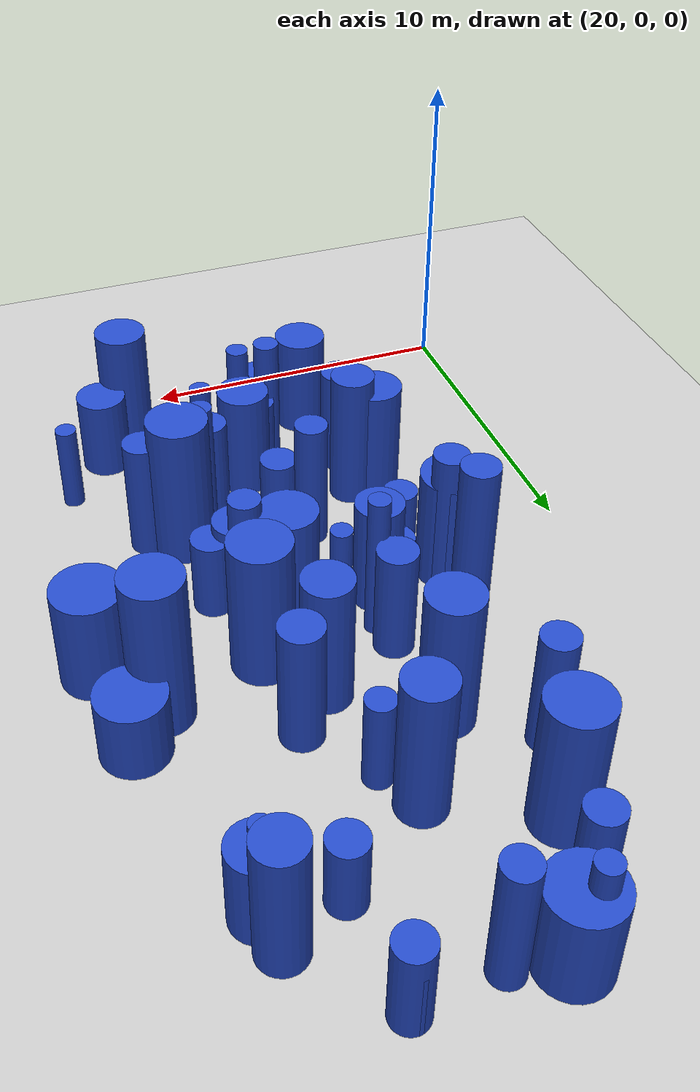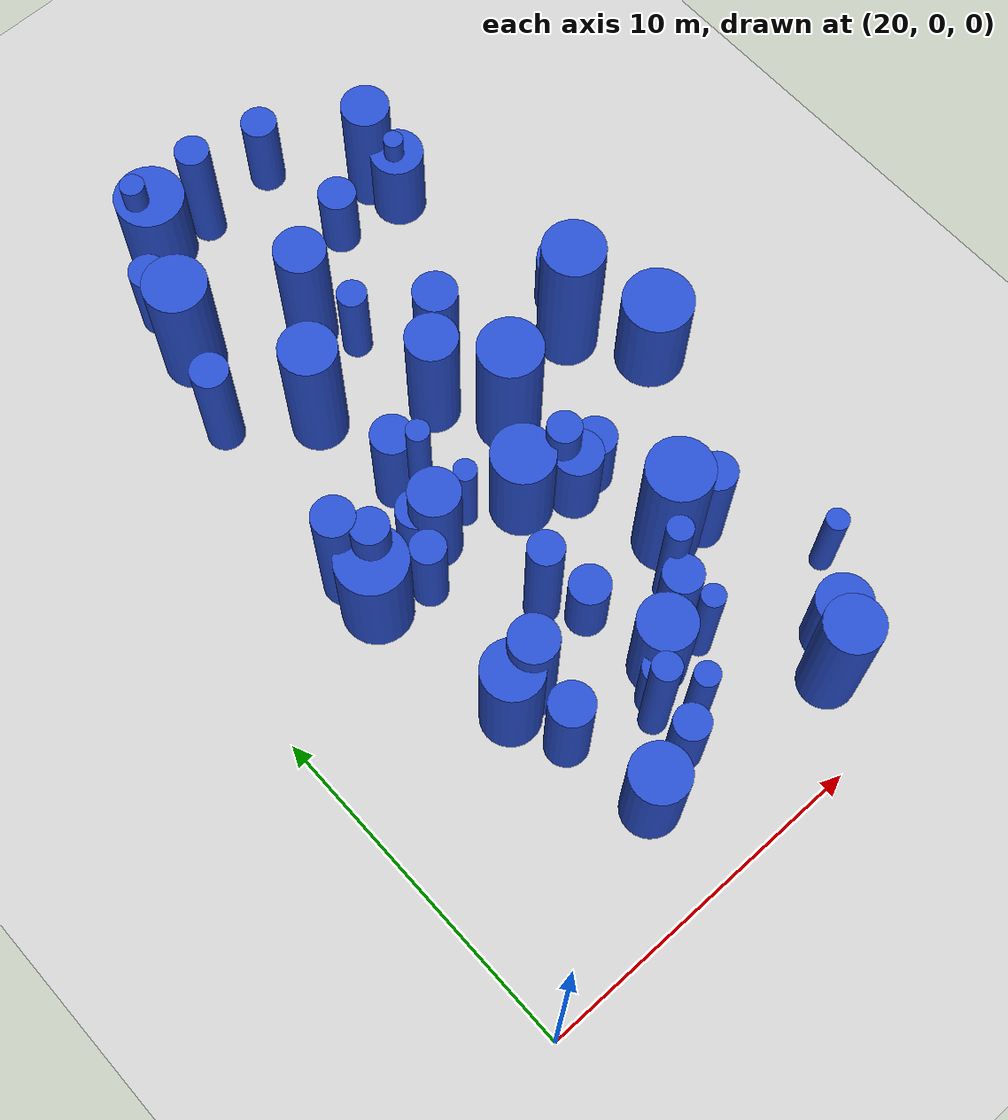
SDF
<sdf version="1.6">
 <world name="default">
  <model name="ground_plane">
   <static>1</static>
   <link name="link">
    <collision name="collision">
     <geometry><plane><normal>0 0 1</normal><size>100 100</size></plane></geometry>
     <surface><friction><ode><mu>100</mu><mu2>50</mu2></ode></friction></surface>
    </collision>
    <visual name="visual">
     <cast_shadows>0</cast_shadows>
     <geometry><plane><normal>0 0 1</normal><size>100 100</size></plane></geometry>
     <material>
      <script><uri>file://media/materials/scripts/gazebo.material</uri><name>Gazebo/Grey</name></script>
     </material>
    </visual>
   </link>
  </model>
  <model name="5">
   <static>0</static>
   <link name="link">
    <inertial>
     <mass>2</mass>
     <inertia><ixx>1.19895</ixx><ixy>0</ixy><ixz>0</ixz><iyy>1.19895</iyy><iyz>0</iyz><izz>0.27551</izz></inertia>
    </inertial>
    <collision name="collision">
     <geometry><cylinder><length>2.52333</length><radius>0.52489</radius></cylinder></geometry>
     <surface><contact><collide_without_contact>1</collide_without_contact></contact></surface>
    </collision>
    <visual name="visual">
     <geometry><cylinder><length>2.52333</length><radius>0.52489</radius></cylinder></geometry>
     <material>
      <script><uri>file://media/materials/scripts/gazebo.material</uri><name>Gazebo/Blue</name></script>
     </material>
    </visual>
    <gravity>0</gravity>
   </link>
   <pose>27.8719 4.70569 1.26166 0 -0 0</pose>
  </model>
  <model name="22">
   <static>0</static>
   <link name="link">
    <inertial>
     <mass>2</mass>
     <inertia><ixx>2.26913</ixx><ixy>0</ixy><ixz>0</ixz><iyy>2.26913</iyy><iyz>0</iyz><izz>0.505011</izz></inertia>
    </inertial>
    <collision name="collision">
     <geometry><cylinder><length>3.47847</length><radius>0.710641</radius></cylinder></geometry>
     <surface><contact><collide_without_contact>1</collide_without_contact></contact></surface>
    </collision>
    <visual name="visual">
     <geometry><cylinder><length>3.47847</length><radius>0.710641</radius></cylinder></geometry>
     <material>
      <script><uri>file://media/materials/scripts/gazebo.material</uri><name>Gazebo/Blue</name></script>
     </material>
    </visual>
    <gravity>0</gravity>
   </link>
   <pose>26.527 11.7667 1.73924 0 -0 0</pose>
  </model>
  <model name="57">
   <static>0</static>
   <link name="link">
    <inertial>
     <mass>2</mass>
     <inertia><ixx>1.41533</ixx><ixy>0</ixy><ixz>0</ixz><iyy>1.41533</iyy><iyz>0</iyz><izz>0.380508</izz></inertia>
    </inertial>
    <collision name="collision">
     <geometry><cylinder><length>2.71117</length><radius>0.616853</radius></cylinder></geometry>
     <surface><contact><collide_without_contact>1</collide_without_contact></contact></surface>
    </collision>
    <visual name="visual">
     <geometry><cylinder><length>2.71117</length><radius>0.616853</radius></cylinder></geometry>
     <material>
      <script><uri>file://media/materials/scripts/gazebo.material</uri><name>Gazebo/Blue</name></script>
     </material>
    </visual>
    <gravity>0</gravity>
   </link>
   <pose>26.4776 16.4928 1.35559 0 -0 0</pose>
  </model>
  <model name="66">
   <static>0</static>
   <link name="link">
    <inertial>
     <mass>2</mass>
     <inertia><ixx>2.97876</ixx><ixy>0</ixy><ixz>0</ixz><iyy>2.97876</iyy><iyz>0</iyz><izz>0.129571</izz></inertia>
    </inertial>
    <collision name="collision">
     <geometry><cylinder><length>4.18137</length><radius>0.359959</radius></cylinder></geometry>
     <surface><contact><collide_without_contact>1</collide_without_contact></contact></surface>
    </collision>
    <visual name="visual">
     <geometry><cylinder><length>4.18137</length><radius>0.359959</radius></cylinder></geometry>
     <material>
      <script><uri>file://media/materials/scripts/gazebo.material</uri><name>Gazebo/Blue</name></script>
     </material>
    </visual>
    <gravity>0</gravity>
   </link>
   <pose>30.227 6.70811 2.09069 0 -0 0</pose>
  </model>
  <model name="73">
   <static>0</static>
   <link name="link">
    <inertial>
     <mass>2</mass>
     <inertia><ixx>3.57015</ixx><ixy>0</ixy><ixz>0</ixz><iyy>3.57015</iyy><iyz>0</iyz><izz>0.638733</izz></inertia>
    </inertial>
    <collision name="collision">
     <geometry><cylinder><length>4.41641</length><radius>0.799207</radius></cylinder></geometry>
     <surface><contact><collide_without_contact>1</collide_without_contact></contact></surface>
    </collision>
    <visual name="visual">
     <geometry><cylinder><length>4.41641</length><radius>0.799207</radius></cylinder></geometry>
     <material>
      <script><uri>file://media/materials/scripts/gazebo.material</uri><name>Gazebo/Blue</name></script>
     </material>
    </visual>
    <gravity>0</gravity>
   </link>
   <pose>26.4993 16.6319 2.20821 0 -0 0</pose>
  </model>
  <model name="82">
   <static>0</static>
   <link name="link">
    <inertial>
     <mass>2</mass>
     <inertia><ixx>1.61235</ixx><ixy>0</ixy><ixz>0</ixz><iyy>1.61235</iyy><iyz>0</iyz><izz>0.244371</izz></inertia>
    </inertial>
    <collision name="collision">
     <geometry><cylinder><length>2.99014</length><radius>0.494338</radius></cylinder></geometry>
     <surface><contact><collide_without_contact>1</collide_without_contact></contact></surface>
    </collision>
    <visual name="visual">
     <geometry><cylinder><length>2.99014</length><radius>0.494338</radius></cylinder></geometry>
     <material>
      <script><uri>file://media/materials/scripts/gazebo.material</uri><name>Gazebo/Blue</name></script>
     </material>
    </visual>
    <gravity>0</gravity>
   </link>
   <pose>25.5362 10.8942 1.49507 0 -0 0</pose>
  </model>
  <model name="94">
   <static>0</static>
   <link name="link">
    <inertial>
     <mass>2</mass>
     <inertia><ixx>2.17349</ixx><ixy>0</ixy><ixz>0</ixz><iyy>2.17349</iyy><iyz>0</iyz><izz>0.653674</izz></inertia>
    </inertial>
    <collision name="collision">
     <geometry><cylinder><length>3.32865</length><radius>0.808501</radius></cylinder></geometry>
     <surface><contact><collide_without_contact>1</collide_without_contact></contact></surface>
    </collision>
    <visual name="visual">
     <geometry><cylinder><length>3.32865</length><radius>0.808501</radius></cylinder></geometry>
     <material>
      <script><uri>file://media/materials/scripts/gazebo.material</uri><name>Gazebo/Blue</name></script>
     </material>
    </visual>
    <gravity>0</gravity>
   </link>
   <pose>25.7537 2.67026 1.66433 0 -0 0</pose>
  </model>
  <model name="102">
   <static>0</static>
   <link name="link">
    <inertial>
     <mass>2</mass>
     <inertia>
      <ixx>0.731561</ixx>
      <ixy>0</ixy>
      <ixz>0</ixz>
      <iyy>0.731561</iyy>
      <iyz>0</iyz>
      <izz>0.0647101</izz>
     </inertia>
    </inertial>
    <collision name="collision">
     <geometry><cylinder><length>2.04823</length><radius>0.254382</radius></cylinder></geometry>
     <surface><contact><collide_without_contact>1</collide_without_contact></contact></surface>
    </collision>
    <visual name="visual">
     <geometry><cylinder><length>2.04823</length><radius>0.254382</radius></cylinder></geometry>
     <material>
      <script><uri>file://media/materials/scripts/gazebo.material</uri><name>Gazebo/Blue</name></script>
     </material>
    </visual>
    <gravity>0</gravity>
   </link>
   <pose>30.5558 24.1859 1.02411 0 -0 0</pose>
  </model>
  <model name="120">
   <static>0</static>
   <link name="link">
    <inertial>
     <mass>2</mass>
     <inertia><ixx>2.54871</ixx><ixy>0</ixy><ixz>0</ixz><iyy>2.54871</iyy><iyz>0</iyz><izz>0.224282</izz></inertia>
    </inertial>
    <collision name="collision">
     <geometry><cylinder><length>3.82354</length><radius>0.473584</radius></cylinder></geometry>
     <surface><contact><collide_without_contact>1</collide_without_contact></contact></surface>
    </collision>
    <visual name="visual">
     <geometry><cylinder><length>3.82354</length><radius>0.473584</radius></cylinder></geometry>
     <material>
      <script><uri>file://media/materials/scripts/gazebo.material</uri><name>Gazebo/Blue</name></script>
     </material>
    </visual>
    <gravity>0</gravity>
   </link>
   <pose>30.1137 10.7823 1.91177 0 -0 0</pose>
  </model>
  <model name="126">
   <static>0</static>
   <link name="link">
    <inertial>
     <mass>2</mass>
     <inertia><ixx>2.71554</ixx><ixy>0</ixy><ixz>0</ixz><iyy>2.71554</iyy><iyz>0</iyz><izz>0.387515</izz></inertia>
    </inertial>
    <collision name="collision">
     <geometry><cylinder><length>3.88982</length><radius>0.622507</radius></cylinder></geometry>
     <surface><contact><collide_without_contact>1</collide_without_contact></contact></surface>
    </collision>
    <visual name="visual">
     <geometry><cylinder><length>3.88982</length><radius>0.622507</radius></cylinder></geometry>
     <material>
      <script><uri>file://media/materials/scripts/gazebo.material</uri><name>Gazebo/Blue</name></script>
     </material>
    </visual>
    <gravity>0</gravity>
   </link>
   <pose>30.2394 15.9447 1.94491 0 -0 0</pose>
  </model>
  <model name="139">
   <static>0</static>
   <link name="link">
    <inertial>
     <mass>2</mass>
     <inertia><ixx>1.26043</ixx><ixy>0</ixy><ixz>0</ixz><iyy>1.26043</iyy><iyz>0</iyz><izz>0.289407</izz></inertia>
    </inertial>
    <collision name="collision">
     <geometry><cylinder><length>2.58734</length><radius>0.537965</radius></cylinder></geometry>
     <surface><contact><collide_without_contact>1</collide_without_contact></contact></surface>
    </collision>
    <visual name="visual">
     <geometry><cylinder><length>2.58734</length><radius>0.537965</radius></cylinder></geometry>
     <material>
      <script><uri>file://media/materials/scripts/gazebo.material</uri><name>Gazebo/Blue</name></script>
     </material>
    </visual>
    <gravity>0</gravity>
   </link>
   <pose>25.2967 22.244 1.29367 0 -0 0</pose>
  </model>
  <model name="141">
   <static>0</static>
   <link name="link">
    <inertial>
     <mass>2</mass>
     <inertia><ixx>2.20126</ixx><ixy>0</ixy><ixz>0</ixz><iyy>2.20126</iyy><iyz>0</iyz><izz>0.372364</izz></inertia>
    </inertial>
    <collision name="collision">
     <geometry><cylinder><length>3.47714</length><radius>0.610216</radius></cylinder></geometry>
     <surface><contact><collide_without_contact>1</collide_without_contact></contact></surface>
    </collision>
    <visual name="visual">
     <geometry><cylinder><length>3.47714</length><radius>0.610216</radius></cylinder></geometry>
     <material>
      <script><uri>file://media/materials/scripts/gazebo.material</uri><name>Gazebo/Blue</name></script>
     </material>
    </visual>
    <gravity>0</gravity>
   </link>
   <pose>25.3082 5.31481 1.73857 0 -0 0</pose>
  </model>
  <model name="158">
   <static>0</static>
   <link name="link">
    <inertial>
     <mass>2</mass>
     <inertia><ixx>1.29846</ixx><ixy>0</ixy><ixz>0</ixz><iyy>1.29846</iyy><iyz>0</iyz><izz>0.251787</izz></inertia>
    </inertial>
    <collision name="collision">
     <geometry><cylinder><length>2.65243</length><radius>0.501784</radius></cylinder></geometry>
     <surface><contact><collide_without_contact>1</collide_without_contact></contact></surface>
    </collision>
    <visual name="visual">
     <geometry><cylinder><length>2.65243</length><radius>0.501784</radius></cylinder></geometry>
     <material>
      <script><uri>file://media/materials/scripts/gazebo.material</uri><name>Gazebo/Blue</name></script>
     </material>
    </visual>
    <gravity>0</gravity>
   </link>
   <pose>27.4067 3.17067 1.32622 0 -0 0</pose>
  </model>
  <model name="174">
   <static>0</static>
   <link name="link">
    <inertial>
     <mass>2</mass>
     <inertia><ixx>2.58714</ixx><ixy>0</ixy><ixz>0</ixz><iyy>2.58714</iyy><iyz>0</iyz><izz>0.23591</izz></inertia>
    </inertial>
    <collision name="collision">
     <geometry><cylinder><length>3.84904</length><radius>0.485706</radius></cylinder></geometry>
     <surface><contact><collide_without_contact>1</collide_without_contact></contact></surface>
    </collision>
    <visual name="visual">
     <geometry><cylinder><length>3.84904</length><radius>0.485706</radius></cylinder></geometry>
     <material>
      <script><uri>file://media/materials/scripts/gazebo.material</uri><name>Gazebo/Blue</name></script>
     </material>
    </visual>
    <gravity>0</gravity>
   </link>
   <pose>28.2157 23.7027 1.92452 0 -0 0</pose>
  </model>
  <model name="176">
   <static>0</static>
   <link name="link">
    <inertial>
     <mass>2</mass>
     <inertia><ixx>2.53835</ixx><ixy>0</ixy><ixz>0</ixz><iyy>2.53835</iyy><iyz>0</iyz><izz>0.118597</izz></inertia>
    </inertial>
    <collision name="collision">
     <geometry><cylinder><length>3.85672</length><radius>0.34438</radius></cylinder></geometry>
     <surface><contact><collide_without_contact>1</collide_without_contact></contact></surface>
    </collision>
    <visual name="visual">
     <geometry><cylinder><length>3.85672</length><radius>0.34438</radius></cylinder></geometry>
     <material>
      <script><uri>file://media/materials/scripts/gazebo.material</uri><name>Gazebo/Blue</name></script>
     </material>
    </visual>
    <gravity>0</gravity>
   </link>
   <pose>28.1689 3.60871 1.92836 0 -0 0</pose>
  </model>
  <model name="183">
   <static>0</static>
   <link name="link">
    <inertial>
     <mass>2</mass>
     <inertia><ixx>3.67163</ixx><ixy>0</ixy><ixz>0</ixz><iyy>3.67163</iyy><iyz>0</iyz><izz>0.271582</izz></inertia>
    </inertial>
    <collision name="collision">
     <geometry><cylinder><length>4.60598</length><radius>0.521135</radius></cylinder></geometry>
     <surface><contact><collide_without_contact>1</collide_without_contact></contact></surface>
    </collision>
    <visual name="visual">
     <geometry><cylinder><length>4.60598</length><radius>0.521135</radius></cylinder></geometry>
     <material>
      <script><uri>file://media/materials/scripts/gazebo.material</uri><name>Gazebo/Blue</name></script>
     </material>
    </visual>
    <gravity>0</gravity>
   </link>
   <pose>24.428 11.7393 2.30299 0 -0 0</pose>
  </model>
  <model name="187">
   <static>0</static>
   <link name="link">
    <inertial>
     <mass>2</mass>
     <inertia><ixx>2.63857</ixx><ixy>0</ixy><ixz>0</ixz><iyy>2.63857</iyy><iyz>0</iyz><izz>0.964066</izz></inertia>
    </inertial>
    <collision name="collision">
     <geometry><cylinder><length>3.59711</length><radius>0.981869</radius></cylinder></geometry>
     <surface><contact><collide_without_contact>1</collide_without_contact></contact></surface>
    </collision>
    <visual name="visual">
     <geometry><cylinder><length>3.59711</length><radius>0.981869</radius></cylinder></geometry>
     <material>
      <script><uri>file://media/materials/scripts/gazebo.material</uri><name>Gazebo/Blue</name></script>
     </material>
    </visual>
    <gravity>0</gravity>
   </link>
   <pose>24.1094 11.3832 1.79856 0 -0 0</pose>
  </model>
  <model name="199">
   <static>0</static>
   <link name="link">
    <inertial>
     <mass>2</mass>
     <inertia><ixx>1.5298</ixx><ixy>0</ixy><ixz>0</ixz><iyy>1.5298</iyy><iyz>0</iyz><izz>0.480172</izz></inertia>
    </inertial>
    <collision name="collision">
     <geometry><cylinder><length>2.78178</length><radius>0.692945</radius></cylinder></geometry>
     <surface><contact><collide_without_contact>1</collide_without_contact></contact></surface>
    </collision>
    <visual name="visual">
     <geometry><cylinder><length>2.78178</length><radius>0.692945</radius></cylinder></geometry>
     <material>
      <script><uri>file://media/materials/scripts/gazebo.material</uri><name>Gazebo/Blue</name></script>
     </material>
    </visual>
    <gravity>0</gravity>
   </link>
   <pose>30.2625 10.3596 1.39089 0 -0 0</pose>
  </model>
  <model name="200">
   <static>0</static>
   <link name="link">
    <inertial>
     <mass>2</mass>
     <inertia><ixx>2.27171</ixx><ixy>0</ixy><ixz>0</ixz><iyy>2.27171</iyy><iyz>0</iyz><izz>0.107901</izz></inertia>
    </inertial>
    <collision name="collision">
     <geometry><cylinder><length>3.64781</length><radius>0.328483</radius></cylinder></geometry>
     <surface><contact><collide_without_contact>1</collide_without_contact></contact></surface>
    </collision>
    <visual name="visual">
     <geometry><cylinder><length>3.64781</length><radius>0.328483</radius></cylinder></geometry>
     <material>
      <script><uri>file://media/materials/scripts/gazebo.material</uri><name>Gazebo/Blue</name></script>
     </material>
    </visual>
    <gravity>0</gravity>
   </link>
   <pose>29.7748 4.99236 1.82391 0 -0 0</pose>
  </model>
  <model name="208">
   <static>0</static>
   <link name="link">
    <inertial>
     <mass>2</mass>
     <inertia><ixx>2.18125</ixx><ixy>0</ixy><ixz>0</ixz><iyy>2.18125</iyy><iyz>0</iyz><izz>0.120256</izz></inertia>
    </inertial>
    <collision name="collision">
     <geometry><cylinder><length>3.56746</length><radius>0.34678</radius></cylinder></geometry>
     <surface><contact><collide_without_contact>1</collide_without_contact></contact></surface>
    </collision>
    <visual name="visual">
     <geometry><cylinder><length>3.56746</length><radius>0.34678</radius></cylinder></geometry>
     <material>
      <script><uri>file://media/materials/scripts/gazebo.material</uri><name>Gazebo/Blue</name></script>
     </material>
    </visual>
    <gravity>0</gravity>
   </link>
   <pose>26.4023 24.0932 1.78373 0 -0 0</pose>
  </model>
  <model name="212">
   <static>0</static>
   <link name="link">
    <inertial>
     <mass>2</mass>
     <inertia><ixx>2.74728</ixx><ixy>0</ixy><ixz>0</ixz><iyy>2.74728</iyy><iyz>0</iyz><izz>0.69755</izz></inertia>
    </inertial>
    <collision name="collision">
     <geometry><cylinder><length>3.79355</length><radius>0.835195</radius></cylinder></geometry>
     <surface><contact><collide_without_contact>1</collide_without_contact></contact></surface>
    </collision>
    <visual name="visual">
     <geometry><cylinder><length>3.79355</length><radius>0.835195</radius></cylinder></geometry>
     <material>
      <script><uri>file://media/materials/scripts/gazebo.material</uri><name>Gazebo/Blue</name></script>
     </material>
    </visual>
    <gravity>0</gravity>
   </link>
   <pose>24.7513 6.84208 1.89678 0 -0 0</pose>
  </model>
  <model name="216">
   <static>0</static>
   <link name="link">
    <inertial>
     <mass>2</mass>
     <inertia><ixx>2.82168</ixx><ixy>0</ixy><ixz>0</ixz><iyy>2.82168</iyy><iyz>0</iyz><izz>0.463222</izz></inertia>
    </inertial>
    <collision name="collision">
     <geometry><cylinder><length>3.94213</length><radius>0.680604</radius></cylinder></geometry>
     <surface><contact><collide_without_contact>1</collide_without_contact></contact></surface>
    </collision>
    <visual name="visual">
     <geometry><cylinder><length>3.94213</length><radius>0.680604</radius></cylinder></geometry>
     <material>
      <script><uri>file://media/materials/scripts/gazebo.material</uri><name>Gazebo/Blue</name></script>
     </material>
    </visual>
    <gravity>0</gravity>
   </link>
   <pose>32.6505 21.6134 1.97106 0 -0 0</pose>
  </model>
  <model name="225">
   <static>0</static>
   <link name="link">
    <inertial>
     <mass>2</mass>
     <inertia><ixx>1.18217</ixx><ixy>0</ixy><ixz>0</ixz><iyy>1.18217</iyy><iyz>0</iyz><izz>0.348258</izz></inertia>
    </inertial>
    <collision name="collision">
     <geometry><cylinder><length>2.45932</length><radius>0.590134</radius></cylinder></geometry>
     <surface><contact><collide_without_contact>1</collide_without_contact></contact></surface>
    </collision>
    <visual name="visual">
     <geometry><cylinder><length>2.45932</length><radius>0.590134</radius></cylinder></geometry>
     <material>
      <script><uri>file://media/materials/scripts/gazebo.material</uri><name>Gazebo/Blue</name></script>
     </material>
    </visual>
    <gravity>0</gravity>
   </link>
   <pose>31.038 10.4921 1.22966 0 -0 0</pose>
  </model>
  <model name="237">
   <static>0</static>
   <link name="link">
    <inertial>
     <mass>2</mass>
     <inertia><ixx>3.61034</ixx><ixy>0</ixy><ixz>0</ixz><iyy>3.61034</iyy><iyz>0</iyz><izz>0.808551</izz></inertia>
    </inertial>
    <collision name="collision">
     <geometry><cylinder><length>4.38593</length><radius>0.899195</radius></cylinder></geometry>
     <surface><contact><collide_without_contact>1</collide_without_contact></contact></surface>
    </collision>
    <visual name="visual">
     <geometry><cylinder><length>4.38593</length><radius>0.899195</radius></cylinder></geometry>
     <material>
      <script><uri>file://media/materials/scripts/gazebo.material</uri><name>Gazebo/Blue</name></script>
     </material>
    </visual>
    <gravity>0</gravity>
   </link>
   <pose>30.414 13.1869 2.19296 0 -0 0</pose>
  </model>
  <model name="240">
   <static>0</static>
   <link name="link">
    <inertial>
     <mass>2</mass>
     <inertia><ixx>3.37595</ixx><ixy>0</ixy><ixz>0</ixz><iyy>3.37595</iyy><iyz>0</iyz><izz>0.794167</izz></inertia>
    </inertial>
    <collision name="collision">
     <geometry><cylinder><length>4.22767</length><radius>0.89116</radius></cylinder></geometry>
     <surface><contact><collide_without_contact>1</collide_without_contact></contact></surface>
    </collision>
    <visual name="visual">
     <geometry><cylinder><length>4.22767</length><radius>0.89116</radius></cylinder></geometry>
     <material>
      <script><uri>file://media/materials/scripts/gazebo.material</uri><name>Gazebo/Blue</name></script>
     </material>
    </visual>
    <gravity>0</gravity>
   </link>
   <pose>25.191 20.5239 2.11383 0 -0 0</pose>
  </model>
  <model name="242">
   <static>0</static>
   <link name="link">
    <inertial>
     <mass>2</mass>
     <inertia><ixx>3.43274</ixx><ixy>0</ixy><ixz>0</ixz><iyy>3.43274</iyy><iyz>0</iyz><izz>0.637187</izz></inertia>
    </inertial>
    <collision name="collision">
     <geometry><cylinder><length>4.3226</length><radius>0.79824</radius></cylinder></geometry>
     <surface><contact><collide_without_contact>1</collide_without_contact></contact></surface>
    </collision>
    <visual name="visual">
     <geometry><cylinder><length>4.3226</length><radius>0.79824</radius></cylinder></geometry>
     <material>
      <script><uri>file://media/materials/scripts/gazebo.material</uri><name>Gazebo/Blue</name></script>
     </material>
    </visual>
    <gravity>0</gravity>
   </link>
   <pose>31.5635 2.06072 2.1613 0 -0 0</pose>
  </model>
  <model name="246">
   <static>0</static>
   <link name="link">
    <inertial>
     <mass>2</mass>
     <inertia><ixx>2.97359</ixx><ixy>0</ixy><ixz>0</ixz><iyy>2.97359</iyy><iyz>0</iyz><izz>0.243459</izz></inertia>
    </inertial>
    <collision name="collision">
     <geometry><cylinder><length>4.13656</length><radius>0.493416</radius></cylinder></geometry>
     <surface><contact><collide_without_contact>1</collide_without_contact></contact></surface>
    </collision>
    <visual name="visual">
     <geometry><cylinder><length>4.13656</length><radius>0.493416</radius></cylinder></geometry>
     <material>
      <script><uri>file://media/materials/scripts/gazebo.material</uri><name>Gazebo/Blue</name></script>
     </material>
    </visual>
    <gravity>0</gravity>
   </link>
   <pose>27.4064 8.5508 2.06828 0 -0 0</pose>
  </model>
  <model name="255">
   <static>0</static>
   <link name="link">
    <inertial>
     <mass>2</mass>
     <inertia><ixx>1.4336</ixx><ixy>0</ixy><ixz>0</ixz><iyy>1.4336</iyy><iyz>0</iyz><izz>0.178463</izz></inertia>
    </inertial>
    <collision name="collision">
     <geometry><cylinder><length>2.84011</length><radius>0.422448</radius></cylinder></geometry>
     <surface><contact><collide_without_contact>1</collide_without_contact></contact></surface>
    </collision>
    <visual name="visual">
     <geometry><cylinder><length>2.84011</length><radius>0.422448</radius></cylinder></geometry>
     <material>
      <script><uri>file://media/materials/scripts/gazebo.material</uri><name>Gazebo/Blue</name></script>
     </material>
    </visual>
    <gravity>0</gravity>
   </link>
   <pose>28.9088 17.8747 1.42005 0 -0 0</pose>
  </model>
  <model name="256">
   <static>0</static>
   <link name="link">
    <inertial>
     <mass>2</mass>
     <inertia><ixx>1.33712</ixx><ixy>0</ixy><ixz>0</ixz><iyy>1.33712</iyy><iyz>0</iyz><izz>0.263301</izz></inertia>
    </inertial>
    <collision name="collision">
     <geometry><cylinder><length>2.68939</length><radius>0.513129</radius></cylinder></geometry>
     <surface><contact><collide_without_contact>1</collide_without_contact></contact></surface>
    </collision>
    <visual name="visual">
     <geometry><cylinder><length>2.68939</length><radius>0.513129</radius></cylinder></geometry>
     <material>
      <script><uri>file://media/materials/scripts/gazebo.material</uri><name>Gazebo/Blue</name></script>
     </material>
    </visual>
    <gravity>0</gravity>
   </link>
   <pose>30.5868 23.9252 1.34469 0 -0 0</pose>
  </model>
  <model name="267">
   <static>0</static>
   <link name="link">
    <inertial>
     <mass>2</mass>
     <inertia><ixx>4.31805</ixx><ixy>0</ixy><ixz>0</ixz><iyy>4.31805</iyy><iyz>0</iyz><izz>0.760081</izz></inertia>
    </inertial>
    <collision name="collision">
     <geometry><cylinder><length>4.86087</length><radius>0.871826</radius></cylinder></geometry>
     <surface><contact><collide_without_contact>1</collide_without_contact></contact></surface>
    </collision>
    <visual name="visual">
     <geometry><cylinder><length>4.86087</length><radius>0.871826</radius></cylinder></geometry>
     <material>
      <script><uri>file://media/materials/scripts/gazebo.material</uri><name>Gazebo/Blue</name></script>
     </material>
    </visual>
    <gravity>0</gravity>
   </link>
   <pose>33.4336 14.0625 2.43043 0 -0 0</pose>
  </model>
  <model name="289">
   <static>0</static>
   <link name="link">
    <inertial>
     <mass>2</mass>
     <inertia><ixx>1.842</ixx><ixy>0</ixy><ixz>0</ixz><iyy>1.842</iyy><iyz>0</iyz><izz>0.0769606</izz></inertia>
    </inertial>
    <collision name="collision">
     <geometry><cylinder><length>3.28954</length><radius>0.277418</radius></cylinder></geometry>
     <surface><contact><collide_without_contact>1</collide_without_contact></contact></surface>
    </collision>
    <visual name="visual">
     <geometry><cylinder><length>3.28954</length><radius>0.277418</radius></cylinder></geometry>
     <material>
      <script><uri>file://media/materials/scripts/gazebo.material</uri><name>Gazebo/Blue</name></script>
     </material>
    </visual>
    <gravity>0</gravity>
   </link>
   <pose>32.7826 20.6256 1.64477 0 -0 0</pose>
  </model>
  <model name="297">
   <static>0</static>
   <link name="link">
    <inertial>
     <mass>2</mass>
     <inertia><ixx>4.02066</ixx><ixy>0</ixy><ixz>0</ixz><iyy>4.02066</iyy><iyz>0</iyz><izz>0.828228</izz></inertia>
    </inertial>
    <collision name="collision">
     <geometry><cylinder><length>4.6518</length><radius>0.91007</radius></cylinder></geometry>
     <surface><contact><collide_without_contact>1</collide_without_contact></contact></surface>
    </collision>
    <visual name="visual">
     <geometry><cylinder><length>4.6518</length><radius>0.91007</radius></cylinder></geometry>
     <material>
      <script><uri>file://media/materials/scripts/gazebo.material</uri><name>Gazebo/Blue</name></script>
     </material>
    </visual>
    <gravity>0</gravity>
   </link>
   <pose>31.1714 7.73121 2.3259 0 -0 0</pose>
  </model>
  <model name="310">
   <static>0</static>
   <link name="link">
    <inertial>
     <mass>2</mass>
     <inertia><ixx>1.97588</ixx><ixy>0</ixy><ixz>0</ixz><iyy>1.97588</iyy><iyz>0</iyz><izz>0.148072</izz></inertia>
    </inertial>
    <collision name="collision">
     <geometry><cylinder><length>3.37803</length><radius>0.384801</radius></cylinder></geometry>
     <surface><contact><collide_without_contact>1</collide_without_contact></contact></surface>
    </collision>
    <visual name="visual">
     <geometry><cylinder><length>3.37803</length><radius>0.384801</radius></cylinder></geometry>
     <material>
      <script><uri>file://media/materials/scripts/gazebo.material</uri><name>Gazebo/Blue</name></script>
     </material>
    </visual>
    <gravity>0</gravity>
   </link>
   <pose>28.4009 5.2997 1.68901 0 -0 0</pose>
  </model>
  <model name="317">
   <static>0</static>
   <link name="link">
    <inertial>
     <mass>2</mass>
     <inertia><ixx>1.43158</ixx><ixy>0</ixy><ixz>0</ixz><iyy>1.43158</iyy><iyz>0</iyz><izz>0.589558</izz></inertia>
    </inertial>
    <collision name="collision">
     <geometry><cylinder><length>2.61166</length><radius>0.767827</radius></cylinder></geometry>
     <surface><contact><collide_without_contact>1</collide_without_contact></contact></surface>
    </collision>
    <visual name="visual">
     <geometry><cylinder><length>2.61166</length><radius>0.767827</radius></cylinder></geometry>
     <material>
      <script><uri>file://media/materials/scripts/gazebo.material</uri><name>Gazebo/Blue</name></script>
     </material>
    </visual>
    <gravity>0</gravity>
   </link>
   <pose>32.5086 2.88801 1.30583 0 -0 0</pose>
  </model>
  <model name="318">
   <static>0</static>
   <link name="link">
    <inertial>
     <mass>2</mass>
     <inertia><ixx>3.59345</ixx><ixy>0</ixy><ixz>0</ixz><iyy>3.59345</iyy><iyz>0</iyz><izz>0.101301</izz></inertia>
    </inertial>
    <collision name="collision">
     <geometry><cylinder><length>4.61051</length><radius>0.318278</radius></cylinder></geometry>
     <surface><contact><collide_without_contact>1</collide_without_contact></contact></surface>
    </collision>
    <visual name="visual">
     <geometry><cylinder><length>4.61051</length><radius>0.318278</radius></cylinder></geometry>
     <material>
      <script><uri>file://media/materials/scripts/gazebo.material</uri><name>Gazebo/Blue</name></script>
     </material>
    </visual>
    <gravity>0</gravity>
   </link>
   <pose>27.0182 12.9095 2.30526 0 -0 0</pose>
  </model>
  <model name="330">
   <static>0</static>
   <link name="link">
    <inertial>
     <mass>2</mass>
     <inertia><ixx>3.24118</ixx><ixy>0</ixy><ixz>0</ixz><iyy>3.24118</iyy><iyz>0</iyz><izz>0.153849</izz></inertia>
    </inertial>
    <collision name="collision">
     <geometry><cylinder><length>4.35724</length><radius>0.392236</radius></cylinder></geometry>
     <surface><contact><collide_without_contact>1</collide_without_contact></contact></surface>
    </collision>
    <visual name="visual">
     <geometry><cylinder><length>4.35724</length><radius>0.392236</radius></cylinder></geometry>
     <material>
      <script><uri>file://media/materials/scripts/gazebo.material</uri><name>Gazebo/Blue</name></script>
     </material>
    </visual>
    <gravity>0</gravity>
   </link>
   <pose>27.4251 4.30531 2.17862 0 -0 0</pose>
  </model>
  <model name="340">
   <static>0</static>
   <link name="link">
    <inertial>
     <mass>2</mass>
     <inertia><ixx>1.31479</ixx><ixy>0</ixy><ixz>0</ixz><iyy>1.31479</iyy><iyz>0</iyz><izz>0.102257</izz></inertia>
    </inertial>
    <collision name="collision">
     <geometry><cylinder><length>2.75354</length><radius>0.319777</radius></cylinder></geometry>
     <surface><contact><collide_without_contact>1</collide_without_contact></contact></surface>
    </collision>
    <visual name="visual">
     <geometry><cylinder><length>2.75354</length><radius>0.319777</radius></cylinder></geometry>
     <material>
      <script><uri>file://media/materials/scripts/gazebo.material</uri><name>Gazebo/Blue</name></script>
     </material>
    </visual>
    <gravity>0</gravity>
   </link>
   <pose>33.9274 4.53373 1.37677 0 -0 0</pose>
  </model>
  <model name="343">
   <static>0</static>
   <link name="link">
    <inertial>
     <mass>2</mass>
     <inertia><ixx>1.08623</ixx><ixy>0</ixy><ixz>0</ixz><iyy>1.08623</iyy><iyz>0</iyz><izz>0.324899</izz></inertia>
    </inertial>
    <collision name="collision">
     <geometry><cylinder><length>2.3543</length><radius>0.569999</radius></cylinder></geometry>
     <surface><contact><collide_without_contact>1</collide_without_contact></contact></surface>
    </collision>
    <visual name="visual">
     <geometry><cylinder><length>2.3543</length><radius>0.569999</radius></cylinder></geometry>
     <material>
      <script><uri>file://media/materials/scripts/gazebo.material</uri><name>Gazebo/Blue</name></script>
     </material>
    </visual>
    <gravity>0</gravity>
   </link>
   <pose>28.0989 7.56498 1.17715 0 -0 0</pose>
  </model>
  <model name="353">
   <static>0</static>
   <link name="link">
    <inertial>
     <mass>2</mass>
     <inertia><ixx>2.13674</ixx><ixy>0</ixy><ixz>0</ixz><iyy>2.13674</iyy><iyz>0</iyz><izz>0.99342</izz></inertia>
    </inertial>
    <collision name="collision">
     <geometry><cylinder><length>3.13691</length><radius>0.996704</radius></cylinder></geometry>
     <surface><contact><collide_without_contact>1</collide_without_contact></contact></surface>
    </collision>
    <visual name="visual">
     <geometry><cylinder><length>3.13691</length><radius>0.996704</radius></cylinder></geometry>
     <material>
      <script><uri>file://media/materials/scripts/gazebo.material</uri><name>Gazebo/Blue</name></script>
     </material>
    </visual>
    <gravity>0</gravity>
   </link>
   <pose>34.7926 12.0981 1.56846 0 -0 0</pose>
  </model>
  <model name="356">
   <static>0</static>
   <link name="link">
    <inertial>
     <mass>2</mass>
     <inertia><ixx>2.44628</ixx><ixy>0</ixy><ixz>0</ixz><iyy>2.44628</iyy><iyz>0</iyz><izz>0.283401</izz></inertia>
    </inertial>
    <collision name="collision">
     <geometry><cylinder><length>3.71853</length><radius>0.532354</radius></cylinder></geometry>
     <surface><contact><collide_without_contact>1</collide_without_contact></contact></surface>
    </collision>
    <visual name="visual">
     <geometry><cylinder><length>3.71853</length><radius>0.532354</radius></cylinder></geometry>
     <material>
      <script><uri>file://media/materials/scripts/gazebo.material</uri><name>Gazebo/Blue</name></script>
     </material>
    </visual>
    <gravity>0</gravity>
   </link>
   <pose>24.3863 18.1727 1.85926 0 -0 0</pose>
  </model>
  <model name="384">
   <static>0</static>
   <link name="link">
    <inertial>
     <mass>2</mass>
     <inertia><ixx>3.45171</ixx><ixy>0</ixy><ixz>0</ixz><iyy>3.45171</iyy><iyz>0</iyz><izz>0.441051</izz></inertia>
    </inertial>
    <collision name="collision">
     <geometry><cylinder><length>4.40308</length><radius>0.664117</radius></cylinder></geometry>
     <surface><contact><collide_without_contact>1</collide_without_contact></contact></surface>
    </collision>
    <visual name="visual">
     <geometry><cylinder><length>4.40308</length><radius>0.664117</radius></cylinder></geometry>
     <material>
      <script><uri>file://media/materials/scripts/gazebo.material</uri><name>Gazebo/Blue</name></script>
     </material>
    </visual>
    <gravity>0</gravity>
   </link>
   <pose>25.5146 6.93782 2.20154 0 -0 0</pose>
  </model>
  <model name="402">
   <static>0</static>
   <link name="link">
    <inertial>
     <mass>2</mass>
     <inertia>
      <ixx>0.999783</ixx>
      <ixy>0</ixy>
      <ixz>0</ixz>
      <iyy>0.999783</iyy>
      <iyz>0</iyz>
      <izz>0.297664</izz>
     </inertia>
    </inertial>
    <collision name="collision">
     <geometry><cylinder><length>2.25958</length><radius>0.545586</radius></cylinder></geometry>
     <surface><contact><collide_without_contact>1</collide_without_contact></contact></surface>
    </collision>
    <visual name="visual">
     <geometry><cylinder><length>2.25958</length><radius>0.545586</radius></cylinder></geometry>
     <material>
      <script><uri>file://media/materials/scripts/gazebo.material</uri><name>Gazebo/Blue</name></script>
     </material>
    </visual>
    <gravity>0</gravity>
   </link>
   <pose>30.8703 20.8876 1.12979 0 -0 0</pose>
  </model>
  <model name="416">
   <static>0</static>
   <link name="link">
    <inertial>
     <mass>2</mass>
     <inertia><ixx>1.123</ixx><ixy>0</ixy><ixz>0</ixz><iyy>1.123</iyy><iyz>0</iyz><izz>0.344612</izz></inertia>
    </inertial>
    <collision name="collision">
     <geometry><cylinder><length>2.38834</length><radius>0.587037</radius></cylinder></geometry>
     <surface><contact><collide_without_contact>1</collide_without_contact></contact></surface>
    </collision>
    <visual name="visual">
     <geometry><cylinder><length>2.38834</length><radius>0.587037</radius></cylinder></geometry>
     <material>
      <script><uri>file://media/materials/scripts/gazebo.material</uri><name>Gazebo/Blue</name></script>
     </material>
    </visual>
    <gravity>0</gravity>
   </link>
   <pose>26.1821 12.0931 1.19417 0 -0 0</pose>
  </model>
  <model name="432">
   <static>0</static>
   <link name="link">
    <inertial>
     <mass>2</mass>
     <inertia><ixx>1.47592</ixx><ixy>0</ixy><ixz>0</ixz><iyy>1.47592</iyy><iyz>0</iyz><izz>0.106174</izz></inertia>
    </inertial>
    <collision name="collision">
     <geometry><cylinder><length>2.92181</length><radius>0.325844</radius></cylinder></geometry>
     <surface><contact><collide_without_contact>1</collide_without_contact></contact></surface>
    </collision>
    <visual name="visual">
     <geometry><cylinder><length>2.92181</length><radius>0.325844</radius></cylinder></geometry>
     <material>
      <script><uri>file://media/materials/scripts/gazebo.material</uri><name>Gazebo/Blue</name></script>
     </material>
    </visual>
    <gravity>0</gravity>
   </link>
   <pose>27.686 11.8938 1.4609 0 -0 0</pose>
  </model>
  <model name="434">
   <static>0</static>
   <link name="link">
    <inertial>
     <mass>2</mass>
     <inertia><ixx>1.40143</ixx><ixy>0</ixy><ixz>0</ixz><iyy>1.40143</iyy><iyz>0</iyz><izz>0.57497</izz></inertia>
    </inertial>
    <collision name="collision">
     <geometry><cylinder><length>2.58528</length><radius>0.758268</radius></cylinder></geometry>
     <surface><contact><collide_without_contact>1</collide_without_contact></contact></surface>
    </collision>
    <visual name="visual">
     <geometry><cylinder><length>2.58528</length><radius>0.758268</radius></cylinder></geometry>
     <material>
      <script><uri>file://media/materials/scripts/gazebo.material</uri><name>Gazebo/Blue</name></script>
     </material>
    </visual>
    <gravity>0</gravity>
   </link>
   <pose>32.8787 20.6329 1.29264 0 -0 0</pose>
  </model>
  <model name="443">
   <static>0</static>
   <link name="link">
    <inertial>
     <mass>2</mass>
     <inertia><ixx>3.16284</ixx><ixy>0</ixy><ixz>0</ixz><iyy>3.16284</iyy><iyz>0</iyz><izz>0.521859</izz></inertia>
    </inertial>
    <collision name="collision">
     <geometry><cylinder><length>4.1727</length><radius>0.722398</radius></cylinder></geometry>
     <surface><contact><collide_without_contact>1</collide_without_contact></contact></surface>
    </collision>
    <visual name="visual">
     <geometry><cylinder><length>4.1727</length><radius>0.722398</radius></cylinder></geometry>
     <material>
      <script><uri>file://media/materials/scripts/gazebo.material</uri><name>Gazebo/Blue</name></script>
     </material>
    </visual>
    <gravity>0</gravity>
   </link>
   <pose>29.1718 14.8639 2.08635 0 -0 0</pose>
  </model>
  <model name="454">
   <static>0</static>
   <link name="link">
    <inertial>
     <mass>2</mass>
     <inertia><ixx>2.15563</ixx><ixy>0</ixy><ixz>0</ixz><iyy>2.15563</iyy><iyz>0</iyz><izz>0.343172</izz></inertia>
    </inertial>
    <collision name="collision">
     <geometry><cylinder><length>3.45026</length><radius>0.585809</radius></cylinder></geometry>
     <surface><contact><collide_without_contact>1</collide_without_contact></contact></surface>
    </collision>
    <visual name="visual">
     <geometry><cylinder><length>3.45026</length><radius>0.585809</radius></cylinder></geometry>
     <material>
      <script><uri>file://media/materials/scripts/gazebo.material</uri><name>Gazebo/Blue</name></script>
     </material>
    </visual>
    <gravity>0</gravity>
   </link>
   <pose>26.7909 13.7203 1.72513 0 -0 0</pose>
  </model>
  <model name="458">
   <static>0</static>
   <link name="link">
    <inertial>
     <mass>2</mass>
     <inertia><ixx>1.20109</ixx><ixy>0</ixy><ixz>0</ixz><iyy>1.20109</iyy><iyz>0</iyz><izz>0.949301</izz></inertia>
    </inertial>
    <collision name="collision">
     <geometry><cylinder><length>2.08773</length><radius>0.974321</radius></cylinder></geometry>
     <surface><contact><collide_without_contact>1</collide_without_contact></contact></surface>
    </collision>
    <visual name="visual">
     <geometry><cylinder><length>2.08773</length><radius>0.974321</radius></cylinder></geometry>
     <material>
      <script><uri>file://media/materials/scripts/gazebo.material</uri><name>Gazebo/Blue</name></script>
     </material>
    </visual>
    <gravity>0</gravity>
   </link>
   <pose>34.3906 15.0162 1.04387 0 -0 0</pose>
  </model>
  <model name="462">
   <static>0</static>
   <link name="link">
    <inertial>
     <mass>2</mass>
     <inertia><ixx>2.27536</ixx><ixy>0</ixy><ixz>0</ixz><iyy>2.27536</iyy><iyz>0</iyz><izz>0.775227</izz></inertia>
    </inertial>
    <collision name="collision">
     <geometry><cylinder><length>3.36548</length><radius>0.88047</radius></cylinder></geometry>
     <surface><contact><collide_without_contact>1</collide_without_contact></contact></surface>
    </collision>
    <visual name="visual">
     <geometry><cylinder><length>3.36548</length><radius>0.88047</radius></cylinder></geometry>
     <material>
      <script><uri>file://media/materials/scripts/gazebo.material</uri><name>Gazebo/Blue</name></script>
     </material>
    </visual>
    <gravity>0</gravity>
   </link>
   <pose>28.9732 11.0818 1.68274 0 -0 0</pose>
  </model>
  <model name="472">
   <static>0</static>
   <link name="link">
    <inertial>
     <mass>2</mass>
     <inertia><ixx>2.54668</ixx><ixy>0</ixy><ixz>0</ixz><iyy>2.54668</iyy><iyz>0</iyz><izz>0.312641</izz></inertia>
    </inertial>
    <collision name="collision">
     <geometry><cylinder><length>3.78711</length><radius>0.559143</radius></cylinder></geometry>
     <surface><contact><collide_without_contact>1</collide_without_contact></contact></surface>
    </collision>
    <visual name="visual">
     <geometry><cylinder><length>3.78711</length><radius>0.559143</radius></cylinder></geometry>
     <material>
      <script><uri>file://media/materials/scripts/gazebo.material</uri><name>Gazebo/Blue</name></script>
     </material>
    </visual>
    <gravity>0</gravity>
   </link>
   <pose>32.1613 7.3071 1.89355 0 -0 0</pose>
  </model>
  <model name="479">
   <static>0</static>
   <link name="link">
    <inertial>
     <mass>2</mass>
     <inertia><ixx>3.76007</ixx><ixy>0</ixy><ixz>0</ixz><iyy>3.76007</iyy><iyz>0</iyz><izz>0.336867</izz></inertia>
    </inertial>
    <collision name="collision">
     <geometry><cylinder><length>4.64218</length><radius>0.580402</radius></cylinder></geometry>
     <surface><contact><collide_without_contact>1</collide_without_contact></contact></surface>
    </collision>
    <visual name="visual">
     <geometry><cylinder><length>4.64218</length><radius>0.580402</radius></cylinder></geometry>
     <material>
      <script><uri>file://media/materials/scripts/gazebo.material</uri><name>Gazebo/Blue</name></script>
     </material>
    </visual>
    <gravity>0</gravity>
   </link>
   <pose>23.9157 12.5214 2.32109 0 -0 0</pose>
  </model>
  <model name="480">
   <static>0</static>
   <link name="link">
    <inertial>
     <mass>2</mass>
     <inertia><ixx>3.59191</ixx><ixy>0</ixy><ixz>0</ixz><iyy>3.59191</iyy><iyz>0</iyz><izz>0.258139</izz></inertia>
    </inertial>
    <collision name="collision">
     <geometry><cylinder><length>4.55818</length><radius>0.508073</radius></cylinder></geometry>
     <surface><contact><collide_without_contact>1</collide_without_contact></contact></surface>
    </collision>
    <visual name="visual">
     <geometry><cylinder><length>4.55818</length><radius>0.508073</radius></cylinder></geometry>
     <material>
      <script><uri>file://media/materials/scripts/gazebo.material</uri><name>Gazebo/Blue</name></script>
     </material>
    </visual>
    <gravity>0</gravity>
   </link>
   <pose>31.0243 8.07698 2.27909 0 -0 0</pose>
  </model>
  <model name="483">
   <static>0</static>
   <link name="link">
    <inertial>
     <mass>2</mass>
     <inertia><ixx>2.30027</ixx><ixy>0</ixy><ixz>0</ixz><iyy>2.30027</iyy><iyz>0</iyz><izz>0.634198</izz></inertia>
    </inertial>
    <collision name="collision">
     <geometry><cylinder><length>3.44949</length><radius>0.796365</radius></cylinder></geometry>
     <surface><contact><collide_without_contact>1</collide_without_contact></contact></surface>
    </collision>
    <visual name="visual">
     <geometry><cylinder><length>3.44949</length><radius>0.796365</radius></cylinder></geometry>
     <material>
      <script><uri>file://media/materials/scripts/gazebo.material</uri><name>Gazebo/Blue</name></script>
     </material>
    </visual>
    <gravity>0</gravity>
   </link>
   <pose>28.5109 5.29328 1.72475 0 -0 0</pose>
  </model>
  <model name="485">
   <static>0</static>
   <link name="link">
    <inertial>
     <mass>2</mass>
     <inertia><ixx>1.75086</ixx><ixy>0</ixy><ixz>0</ixz><iyy>1.75086</iyy><iyz>0</iyz><izz>0.983182</izz></inertia>
    </inertial>
    <collision name="collision">
     <geometry><cylinder><length>2.74875</length><radius>0.991555</radius></cylinder></geometry>
     <surface><contact><collide_without_contact>1</collide_without_contact></contact></surface>
    </collision>
    <visual name="visual">
     <geometry><cylinder><length>2.74875</length><radius>0.991555</radius></cylinder></geometry>
     <material>
      <script><uri>file://media/materials/scripts/gazebo.material</uri><name>Gazebo/Blue</name></script>
     </material>
    </visual>
    <gravity>0</gravity>
   </link>
   <pose>26.7526 24.0006 1.37437 0 -0 0</pose>
  </model>
  <model name="492">
   <static>0</static>
   <link name="link">
    <inertial>
     <mass>2</mass>
     <inertia><ixx>1.72198</ixx><ixy>0</ixy><ixz>0</ixz><iyy>1.72198</iyy><iyz>0</iyz><izz>0.309937</izz></inertia>
    </inertial>
    <collision name="collision">
     <geometry><cylinder><length>3.06628</length><radius>0.55672</radius></cylinder></geometry>
     <surface><contact><collide_without_contact>1</collide_without_contact></contact></surface>
    </collision>
    <visual name="visual">
     <geometry><cylinder><length>3.06628</length><radius>0.55672</radius></cylinder></geometry>
     <material>
      <script><uri>file://media/materials/scripts/gazebo.material</uri><name>Gazebo/Blue</name></script>
     </material>
    </visual>
    <gravity>0</gravity>
   </link>
   <pose>29.8304 6.03327 1.53314 0 -0 0</pose>
  </model>
  <model name="497">
   <static>0</static>
   <link name="link">
    <inertial>
     <mass>2</mass>
     <inertia><ixx>3.54611</ixx><ixy>0</ixy><ixz>0</ixz><iyy>3.54611</iyy><iyz>0</iyz><izz>0.518844</izz></inertia>
    </inertial>
    <collision name="collision">
     <geometry><cylinder><length>4.44074</length><radius>0.720308</radius></cylinder></geometry>
     <surface><contact><collide_without_contact>1</collide_without_contact></contact></surface>
    </collision>
    <visual name="visual">
     <geometry><cylinder><length>4.44074</length><radius>0.720308</radius></cylinder></geometry>
     <material>
      <script><uri>file://media/materials/scripts/gazebo.material</uri><name>Gazebo/Blue</name></script>
     </material>
    </visual>
    <gravity>0</gravity>
   </link>
   <pose>28.2163 19.0136 2.22037 0 -0 0</pose>
  </model>
 </world>
</sdf>
